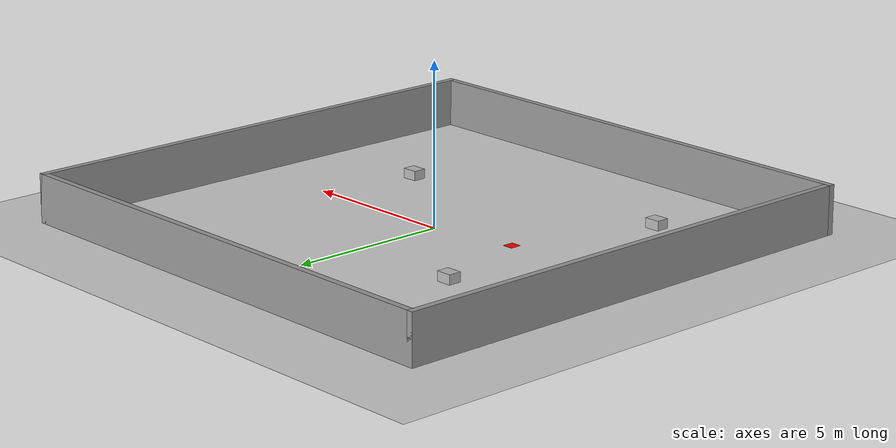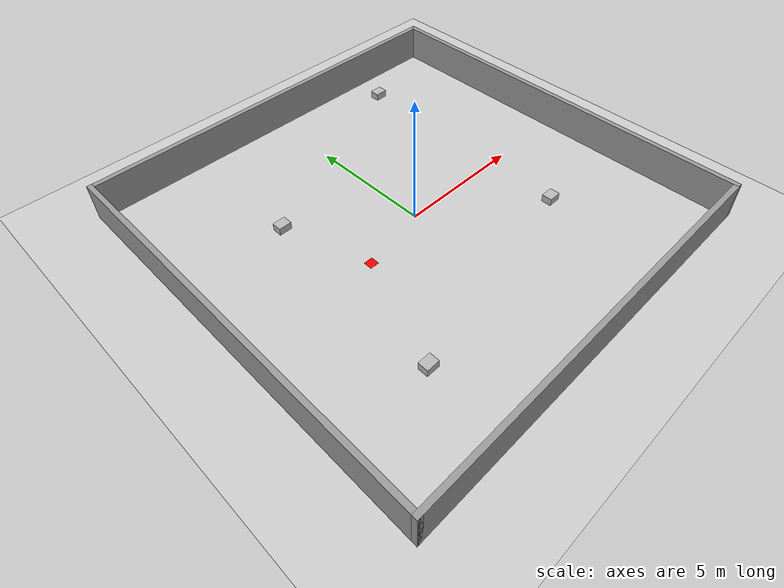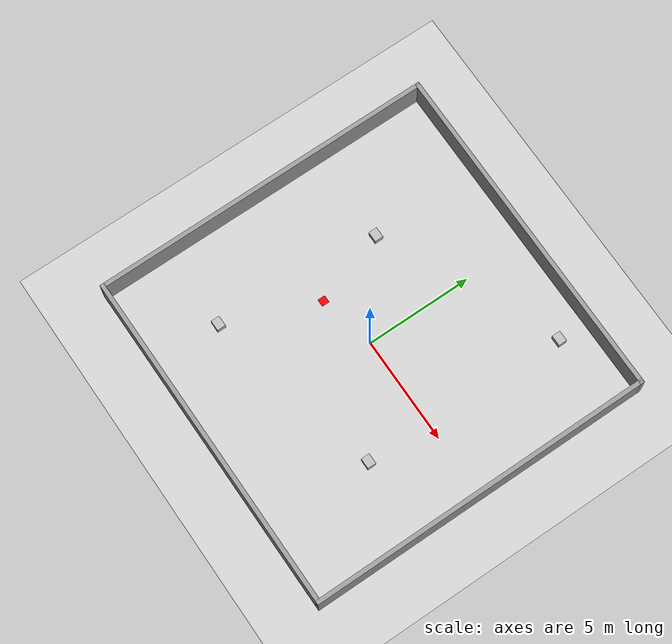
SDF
<sdf version="1.7">
 <world name="default">
  <light name="sun" type="directional">
   <pose>0 0 10 0 -0 0</pose>
   <diffuse>0.8 0.8 0.8 1</diffuse>
   <specular>0.2 0.2 0.2 1</specular>
   <attenuation>
    <range>1000</range>
    <constant>0.9</constant>
    <linear>0.01</linear>
    <quadratic>0.001</quadratic>
   </attenuation>
   <direction>-0.5 0.1 -0.9</direction>
   <spot><inner_angle>0</inner_angle><outer_angle>0</outer_angle><falloff>0</falloff></spot>
  </light>
  <model name="ground_plane">
   <static>1</static>
   <link name="link">
    <collision name="collision">
     <geometry><plane><normal>0 0 1</normal><size>100 100</size></plane></geometry>
     <surface>
      <contact><collide_bitmask>65535</collide_bitmask></contact>
      <friction><ode><mu>100</mu><mu2>50</mu2></ode></friction>
     </surface>
    </collision>
    <visual name="visual">
     <cast_shadows>0</cast_shadows>
     <geometry><plane><normal>0 0 1</normal><size>100 100</size></plane></geometry>
     <material>
      <script><uri>file://media/materials/scripts/gazebo.material</uri><name>Gazebo/Grey</name></script>
     </material>
    </visual>
   </link>
  </model>
  <gravity>0 0 -9.8</gravity>
  <magnetic_field>6e-06 2.3e-05 -4.2e-05</magnetic_field>
  <atmosphere type="adiabatic"/>
  <physics type="ode">
   <max_step_size>0.001</max_step_size>
   <real_time_factor>1</real_time_factor>
   <real_time_update_rate>1000</real_time_update_rate>
  </physics>
  <scene><ambient>0.4 0.4 0.4 1</ambient><background>0.7 0.7 0.7 1</background><shadows>1</shadows></scene>
  <spherical_coordinates>
   <surface_model>EARTH_WGS84</surface_model>
   <latitude_deg>0</latitude_deg>
   <longitude_deg>0</longitude_deg>
   <elevation>0</elevation>
   <heading_deg>0</heading_deg>
  </spherical_coordinates>
  <model name="grey_wall_mine">
   <link name="link">
    <pose>0 0 0.75 0 -0 0</pose>
    <inertial>
     <mass>1</mass>
     <inertia><ixx>1</ixx><ixy>0</ixy><ixz>0</ixz><iyy>1</iyy><iyz>0</iyz><izz>1</izz></inertia>
    </inertial>
    <visual name="visual">
     <cast_shadows>0</cast_shadows>
     <geometry><box><size>16.2 0.2 1.5</size></box></geometry>
     <material>
      <script>
       <uri>model://grey_wall/materials/scripts</uri>
       <uri>model://grey_wall/materials/textures</uri>
       <name>vrc/grey_wall</name>
      </script>
      <shader type="pixel"><normal_map>__default__</normal_map></shader>
      <ambient>1 1 1 1</ambient>
      <diffuse>1 1 1 1</diffuse>
      <specular>0 0 0 1</specular>
      <emissive>0 0 0 1</emissive>
     </material>
    </visual>
    <collision name="collision">
     <geometry><box><size>16.2 0.2 1.5</size></box></geometry>
     <surface>
      <friction>
       <ode><mu>1</mu><mu2>1</mu2><fdir1>0 0 0</fdir1><slip1>0</slip1><slip2>0</slip2></ode>
       <torsional>
        <coefficient>1</coefficient>
        <patch_radius>0</patch_radius>
        <surface_radius>0</surface_radius>
        <use_patch_radius>1</use_patch_radius>
        <ode><slip>0</slip></ode>
       </torsional>
      </friction>
      <bounce><restitution_coefficient>0</restitution_coefficient><threshold>1e+06</threshold></bounce>
      <contact>
       <collide_without_contact>0</collide_without_contact>
       <collide_without_contact_bitmask>1</collide_without_contact_bitmask>
       <collide_bitmask>1</collide_bitmask>
       <ode>
        <soft_cfm>0</soft_cfm>
        <soft_erp>0.2</soft_erp>
        <kp>1e+13</kp>
        <kd>1</kd>
        <max_vel>0.01</max_vel>
        <min_depth>0</min_depth>
       </ode>
       <bullet>
        <split_impulse>1</split_impulse>
        <split_impulse_penetration_threshold>-0.01</split_impulse_penetration_threshold>
        <soft_cfm>0</soft_cfm>
        <soft_erp>0.2</soft_erp>
        <kp>1e+13</kp>
        <kd>1</kd>
       </bullet>
      </contact>
     </surface>
    </collision>
   </link>
   <link name="link_clone">
    <pose>0 -16 0.75 0 -0 0</pose>
    <inertial>
     <mass>1</mass>
     <inertia><ixx>1</ixx><ixy>0</ixy><ixz>0</ixz><iyy>1</iyy><iyz>0</iyz><izz>1</izz></inertia>
    </inertial>
    <visual name="visual">
     <cast_shadows>0</cast_shadows>
     <geometry><box><size>16.2 0.2 1.5</size></box></geometry>
     <material>
      <script>
       <uri>model://grey_wall/materials/scripts</uri>
       <uri>model://grey_wall/materials/textures</uri>
       <name>vrc/grey_wall</name>
      </script>
      <shader type="pixel"><normal_map>__default__</normal_map></shader>
      <ambient>1 1 1 1</ambient>
      <diffuse>1 1 1 1</diffuse>
      <specular>0 0 0 1</specular>
      <emissive>0 0 0 1</emissive>
     </material>
    </visual>
    <collision name="collision">
     <geometry><box><size>16.2 0.2 1.5</size></box></geometry>
     <surface>
      <friction>
       <ode><mu>1</mu><mu2>1</mu2><fdir1>0 0 0</fdir1><slip1>0</slip1><slip2>0</slip2></ode>
       <torsional>
        <coefficient>1</coefficient>
        <patch_radius>0</patch_radius>
        <surface_radius>0</surface_radius>
        <use_patch_radius>1</use_patch_radius>
        <ode><slip>0</slip></ode>
       </torsional>
      </friction>
      <bounce><restitution_coefficient>0</restitution_coefficient><threshold>1e+06</threshold></bounce>
      <contact>
       <collide_without_contact>0</collide_without_contact>
       <collide_without_contact_bitmask>1</collide_without_contact_bitmask>
       <collide_bitmask>1</collide_bitmask>
       <ode>
        <soft_cfm>0</soft_cfm>
        <soft_erp>0.2</soft_erp>
        <kp>1e+13</kp>
        <kd>1</kd>
        <max_vel>0.01</max_vel>
        <min_depth>0</min_depth>
       </ode>
       <bullet>
        <split_impulse>1</split_impulse>
        <split_impulse_penetration_threshold>-0.01</split_impulse_penetration_threshold>
        <soft_cfm>0</soft_cfm>
        <soft_erp>0.2</soft_erp>
        <kp>1e+13</kp>
        <kd>1</kd>
       </bullet>
      </contact>
     </surface>
    </collision>
   </link>
   <link name="link_clone_0">
    <pose>-8 -8 0.75 0 -0 1.5708</pose>
    <inertial>
     <mass>1</mass>
     <inertia><ixx>1</ixx><ixy>0</ixy><ixz>0</ixz><iyy>1</iyy><iyz>0</iyz><izz>1</izz></inertia>
    </inertial>
    <visual name="visual">
     <cast_shadows>0</cast_shadows>
     <geometry><box><size>16.2 0.2 1.5</size></box></geometry>
     <material>
      <script>
       <uri>model://grey_wall/materials/scripts</uri>
       <uri>model://grey_wall/materials/textures</uri>
       <name>vrc/grey_wall</name>
      </script>
      <shader type="pixel"><normal_map>__default__</normal_map></shader>
      <ambient>1 1 1 1</ambient>
      <diffuse>1 1 1 1</diffuse>
      <specular>0 0 0 1</specular>
      <emissive>0 0 0 1</emissive>
     </material>
    </visual>
    <collision name="collision">
     <geometry><box><size>16.2 0.2 1.5</size></box></geometry>
     <surface>
      <friction>
       <ode><mu>1</mu><mu2>1</mu2><fdir1>0 0 0</fdir1><slip1>0</slip1><slip2>0</slip2></ode>
       <torsional>
        <coefficient>1</coefficient>
        <patch_radius>0</patch_radius>
        <surface_radius>0</surface_radius>
        <use_patch_radius>1</use_patch_radius>
        <ode><slip>0</slip></ode>
       </torsional>
      </friction>
      <bounce><restitution_coefficient>0</restitution_coefficient><threshold>1e+06</threshold></bounce>
      <contact>
       <collide_without_contact>0</collide_without_contact>
       <collide_without_contact_bitmask>1</collide_without_contact_bitmask>
       <collide_bitmask>1</collide_bitmask>
       <ode>
        <soft_cfm>0</soft_cfm>
        <soft_erp>0.2</soft_erp>
        <kp>1e+13</kp>
        <kd>1</kd>
        <max_vel>0.01</max_vel>
        <min_depth>0</min_depth>
       </ode>
       <bullet>
        <split_impulse>1</split_impulse>
        <split_impulse_penetration_threshold>-0.01</split_impulse_penetration_threshold>
        <soft_cfm>0</soft_cfm>
        <soft_erp>0.2</soft_erp>
        <kp>1e+13</kp>
        <kd>1</kd>
       </bullet>
      </contact>
     </surface>
    </collision>
   </link>
   <link name="link_clone_0_clone">
    <pose>8 -8 0.75 0 -0 1.5708</pose>
    <inertial>
     <mass>1</mass>
     <inertia><ixx>1</ixx><ixy>0</ixy><ixz>0</ixz><iyy>1</iyy><iyz>0</iyz><izz>1</izz></inertia>
    </inertial>
    <visual name="visual">
     <cast_shadows>0</cast_shadows>
     <geometry><box><size>16.2 0.2 1.5</size></box></geometry>
     <material>
      <script>
       <uri>model://grey_wall/materials/scripts</uri>
       <uri>model://grey_wall/materials/textures</uri>
       <name>vrc/grey_wall</name>
      </script>
      <shader type="pixel"><normal_map>__default__</normal_map></shader>
      <ambient>1 1 1 1</ambient>
      <diffuse>1 1 1 1</diffuse>
      <specular>0 0 0 1</specular>
      <emissive>0 0 0 1</emissive>
     </material>
    </visual>
    <collision name="collision">
     <geometry><box><size>16.2 0.2 1.5</size></box></geometry>
     <surface>
      <friction>
       <ode><mu>1</mu><mu2>1</mu2><fdir1>0 0 0</fdir1><slip1>0</slip1><slip2>0</slip2></ode>
       <torsional>
        <coefficient>1</coefficient>
        <patch_radius>0</patch_radius>
        <surface_radius>0</surface_radius>
        <use_patch_radius>1</use_patch_radius>
        <ode><slip>0</slip></ode>
       </torsional>
      </friction>
      <bounce><restitution_coefficient>0</restitution_coefficient><threshold>1e+06</threshold></bounce>
      <contact>
       <collide_without_contact>0</collide_without_contact>
       <collide_without_contact_bitmask>1</collide_without_contact_bitmask>
       <collide_bitmask>1</collide_bitmask>
       <ode>
        <soft_cfm>0</soft_cfm>
        <soft_erp>0.2</soft_erp>
        <kp>1e+13</kp>
        <kd>1</kd>
        <max_vel>0.01</max_vel>
        <min_depth>0</min_depth>
       </ode>
       <bullet>
        <split_impulse>1</split_impulse>
        <split_impulse_penetration_threshold>-0.01</split_impulse_penetration_threshold>
        <soft_cfm>0</soft_cfm>
        <soft_erp>0.2</soft_erp>
        <kp>1e+13</kp>
        <kd>1</kd>
       </bullet>
      </contact>
     </surface>
    </collision>
   </link>
   <joint name="link_JOINT_0" type="fixed">
    <parent>link</parent>
    <child>link_clone</child>
    <physics>
     <ode><limit><cfm>0</cfm><erp>0.2</erp></limit><suspension><cfm>0</cfm><erp>0.2</erp></suspension></ode>
    </physics>
   </joint>
   <joint name="link_JOINT_1" type="fixed">
    <parent>link</parent>
    <child>link_clone_0</child>
    <physics>
     <ode><limit><cfm>0</cfm><erp>0.2</erp></limit><suspension><cfm>0</cfm><erp>0.2</erp></suspension></ode>
    </physics>
   </joint>
   <joint name="link_JOINT_2" type="fixed">
    <parent>link</parent>
    <child>link_clone_0_clone</child>
    <physics>
     <ode><limit><cfm>0</cfm><erp>0.2</erp></limit><suspension><cfm>0</cfm><erp>0.2</erp></suspension></ode>
    </physics>
   </joint>
   <static>1</static>
   <pose>0 8 0 0 -0 0</pose>
  </model>
  <model name="goal_flag_box">
   <link name="link">
    <inertial>
     <mass>1</mass>
     <inertia>
      <ixx>0.166667</ixx>
      <ixy>0</ixy>
      <ixz>0</ixz>
      <iyy>0.166667</iyy>
      <iyz>0</iyz>
      <izz>0.166667</izz>
     </inertia>
    </inertial>
    <pose>0 0 -0.495 0 -0 0</pose>
    <visual name="visual">
     <geometry><box><size>0.35 0.35 0.001</size></box></geometry>
     <material>
      <script><name>Gazebo/Grey</name><uri>file://media/materials/scripts/gazebo.material</uri></script>
      <shader type="pixel"><normal_map>__default__</normal_map></shader>
      <ambient>1 0 0 1</ambient>
      <diffuse>0.7 0.7 0.7 1</diffuse>
      <specular>0.01 0.01 0.01 1</specular>
      <emissive>0 0 0 1</emissive>
     </material>
    </visual>
    <collision name="collision">
     <geometry><box><size>0.35 0.35 0.001</size></box></geometry>
     <surface>
      <friction>
       <ode><mu>1</mu><mu2>1</mu2><fdir1>0 0 0</fdir1><slip1>0</slip1><slip2>0</slip2></ode>
       <torsional>
        <coefficient>1</coefficient>
        <patch_radius>0</patch_radius>
        <surface_radius>0</surface_radius>
        <use_patch_radius>1</use_patch_radius>
        <ode><slip>0</slip></ode>
       </torsional>
      </friction>
      <bounce><restitution_coefficient>0</restitution_coefficient><threshold>1e+06</threshold></bounce>
      <contact>
       <collide_without_contact>0</collide_without_contact>
       <collide_without_contact_bitmask>1</collide_without_contact_bitmask>
       <collide_bitmask>1</collide_bitmask>
       <ode>
        <soft_cfm>0</soft_cfm>
        <soft_erp>0.2</soft_erp>
        <kp>1e+13</kp>
        <kd>1</kd>
        <max_vel>0.01</max_vel>
        <min_depth>0</min_depth>
       </ode>
       <bullet>
        <split_impulse>1</split_impulse>
        <split_impulse_penetration_threshold>-0.01</split_impulse_penetration_threshold>
        <soft_cfm>0</soft_cfm>
        <soft_erp>0.2</soft_erp>
        <kp>1e+13</kp>
        <kd>1</kd>
       </bullet>
      </contact>
     </surface>
    </collision>
   </link>
   <static>0</static>
   <pose>-2.65803 -0.566161 0.4955 0 -0 0</pose>
  </model>
  <model name="cardboard_box_0">
   <link name="link">
    <inertial>
     <mass>2</mass>
     <inertia>
      <ixx>0.0416667</ixx>
      <ixy>0</ixy>
      <ixz>0</ixz>
      <iyy>0.0566667</iyy>
      <iyz>0</iyz>
      <izz>0.0683333</izz>
     </inertia>
    </inertial>
    <visual name="visual">
     <pose>0 0 -0.15 0 -0 0</pose>
     <geometry>
      <mesh><uri>model://cardboard_box/meshes/cardboard_box.dae</uri><scale>1.25932 1.00745 0.755591</scale></mesh>
     </geometry>
     <material><shader type="pixel"><normal_map>__default__</normal_map></shader></material>
    </visual>
    <collision name="collision">
     <geometry><box><size>0.5 0.4 0.3</size></box></geometry>
     <surface>
      <friction>
       <ode><mu>1</mu><mu2>1</mu2><fdir1>0 0 0</fdir1><slip1>0</slip1><slip2>0</slip2></ode>
       <torsional>
        <coefficient>1</coefficient>
        <patch_radius>0</patch_radius>
        <surface_radius>0</surface_radius>
        <use_patch_radius>1</use_patch_radius>
        <ode><slip>0</slip></ode>
       </torsional>
      </friction>
      <bounce><restitution_coefficient>0</restitution_coefficient><threshold>1e+06</threshold></bounce>
      <contact>
       <collide_without_contact>0</collide_without_contact>
       <collide_without_contact_bitmask>1</collide_without_contact_bitmask>
       <collide_bitmask>1</collide_bitmask>
       <ode>
        <soft_cfm>0</soft_cfm>
        <soft_erp>0.2</soft_erp>
        <kp>1e+07</kp>
        <kd>1</kd>
        <max_vel>0.1</max_vel>
        <min_depth>0.001</min_depth>
       </ode>
       <bullet>
        <split_impulse>1</split_impulse>
        <split_impulse_penetration_threshold>-0.01</split_impulse_penetration_threshold>
        <soft_cfm>0</soft_cfm>
        <soft_erp>0.2</soft_erp>
        <kp>1e+07</kp>
        <kd>1</kd>
       </bullet>
      </contact>
     </surface>
    </collision>
   </link>
   <static>0</static>
   <pose>-4.2789 -4.80675 0.149 -0 -0 -0</pose>
  </model>
  <model name="cardboard_box_1">
   <link name="link">
    <inertial>
     <mass>2</mass>
     <inertia>
      <ixx>0.0416667</ixx>
      <ixy>0</ixy>
      <ixz>0</ixz>
      <iyy>0.0566667</iyy>
      <iyz>0</iyz>
      <izz>0.0683333</izz>
     </inertia>
    </inertial>
    <visual name="visual">
     <pose>0 0 -0.15 0 -0 0</pose>
     <geometry>
      <mesh><uri>model://cardboard_box/meshes/cardboard_box.dae</uri><scale>1.25932 1.00745 0.755591</scale></mesh>
     </geometry>
     <material><shader type="pixel"><normal_map>__default__</normal_map></shader></material>
    </visual>
    <collision name="collision">
     <geometry><box><size>0.5 0.4 0.3</size></box></geometry>
     <surface>
      <friction>
       <ode><mu>1</mu><mu2>1</mu2><fdir1>0 0 0</fdir1><slip1>0</slip1><slip2>0</slip2></ode>
       <torsional>
        <coefficient>1</coefficient>
        <patch_radius>0</patch_radius>
        <surface_radius>0</surface_radius>
        <use_patch_radius>1</use_patch_radius>
        <ode><slip>0</slip></ode>
       </torsional>
      </friction>
      <bounce><restitution_coefficient>0</restitution_coefficient><threshold>1e+06</threshold></bounce>
      <contact>
       <collide_without_contact>0</collide_without_contact>
       <collide_without_contact_bitmask>1</collide_without_contact_bitmask>
       <collide_bitmask>1</collide_bitmask>
       <ode>
        <soft_cfm>0</soft_cfm>
        <soft_erp>0.2</soft_erp>
        <kp>1e+07</kp>
        <kd>1</kd>
        <max_vel>0.1</max_vel>
        <min_depth>0.001</min_depth>
       </ode>
       <bullet>
        <split_impulse>1</split_impulse>
        <split_impulse_penetration_threshold>-0.01</split_impulse_penetration_threshold>
        <soft_cfm>0</soft_cfm>
        <soft_erp>0.2</soft_erp>
        <kp>1e+07</kp>
        <kd>1</kd>
       </bullet>
      </contact>
     </surface>
    </collision>
   </link>
   <static>0</static>
   <pose>-3.77112 2.88984 0.149 -0 -0 -0</pose>
  </model>
  <model name="cardboard_box_2">
   <link name="link">
    <inertial>
     <mass>2</mass>
     <inertia>
      <ixx>0.0416667</ixx>
      <ixy>0</ixy>
      <ixz>0</ixz>
      <iyy>0.0566667</iyy>
      <iyz>0</iyz>
      <izz>0.0683333</izz>
     </inertia>
    </inertial>
    <visual name="visual">
     <pose>0 0 -0.15 0 -0 0</pose>
     <geometry>
      <mesh><uri>model://cardboard_box/meshes/cardboard_box.dae</uri><scale>1.25932 1.00745 0.755591</scale></mesh>
     </geometry>
     <material><shader type="pixel"><normal_map>__default__</normal_map></shader></material>
    </visual>
    <collision name="collision">
     <geometry><box><size>0.5 0.4 0.3</size></box></geometry>
     <surface>
      <friction>
       <ode><mu>1</mu><mu2>1</mu2><fdir1>0 0 0</fdir1><slip1>0</slip1><slip2>0</slip2></ode>
       <torsional>
        <coefficient>1</coefficient>
        <patch_radius>0</patch_radius>
        <surface_radius>0</surface_radius>
        <use_patch_radius>1</use_patch_radius>
        <ode><slip>0</slip></ode>
       </torsional>
      </friction>
      <bounce><restitution_coefficient>0</restitution_coefficient><threshold>1e+06</threshold></bounce>
      <contact>
       <collide_without_contact>0</collide_without_contact>
       <collide_without_contact_bitmask>1</collide_without_contact_bitmask>
       <collide_bitmask>1</collide_bitmask>
       <ode>
        <soft_cfm>0</soft_cfm>
        <soft_erp>0.2</soft_erp>
        <kp>1e+07</kp>
        <kd>1</kd>
        <max_vel>0.1</max_vel>
        <min_depth>0.001</min_depth>
       </ode>
       <bullet>
        <split_impulse>1</split_impulse>
        <split_impulse_penetration_threshold>-0.01</split_impulse_penetration_threshold>
        <soft_cfm>0</soft_cfm>
        <soft_erp>0.2</soft_erp>
        <kp>1e+07</kp>
        <kd>1</kd>
       </bullet>
      </contact>
     </surface>
    </collision>
   </link>
   <static>0</static>
   <pose>4.38619 6.61424 0.149 -0 -0 -0</pose>
  </model>
  <model name="cardboard_box_3">
   <link name="link">
    <inertial>
     <mass>2</mass>
     <inertia>
      <ixx>0.0416667</ixx>
      <ixy>0</ixy>
      <ixz>0</ixz>
      <iyy>0.0566667</iyy>
      <iyz>0</iyz>
      <izz>0.0683333</izz>
     </inertia>
    </inertial>
    <visual name="visual">
     <pose>0 0 -0.15 0 -0 0</pose>
     <geometry>
      <mesh><uri>model://cardboard_box/meshes/cardboard_box.dae</uri><scale>1.25932 1.00745 0.755591</scale></mesh>
     </geometry>
     <material><shader type="pixel"><normal_map>__default__</normal_map></shader></material>
    </visual>
    <collision name="collision">
     <geometry><box><size>0.5 0.4 0.3</size></box></geometry>
     <surface>
      <friction>
       <ode><mu>1</mu><mu2>1</mu2><fdir1>0 0 0</fdir1><slip1>0</slip1><slip2>0</slip2></ode>
       <torsional>
        <coefficient>1</coefficient>
        <patch_radius>0</patch_radius>
        <surface_radius>0</surface_radius>
        <use_patch_radius>1</use_patch_radius>
        <ode><slip>0</slip></ode>
       </torsional>
      </friction>
      <bounce><restitution_coefficient>0</restitution_coefficient><threshold>1e+06</threshold></bounce>
      <contact>
       <collide_without_contact>0</collide_without_contact>
       <collide_without_contact_bitmask>1</collide_without_contact_bitmask>
       <collide_bitmask>1</collide_bitmask>
       <ode>
        <soft_cfm>0</soft_cfm>
        <soft_erp>0.2</soft_erp>
        <kp>1e+07</kp>
        <kd>1</kd>
        <max_vel>0.1</max_vel>
        <min_depth>0.001</min_depth>
       </ode>
       <bullet>
        <split_impulse>1</split_impulse>
        <split_impulse_penetration_threshold>-0.01</split_impulse_penetration_threshold>
        <soft_cfm>0</soft_cfm>
        <soft_erp>0.2</soft_erp>
        <kp>1e+07</kp>
        <kd>1</kd>
       </bullet>
      </contact>
     </surface>
    </collision>
   </link>
   <static>0</static>
   <pose>4.18659 -2.96586 0.149 -0 -0 -0</pose>
  </model>
 </world>
</sdf>
